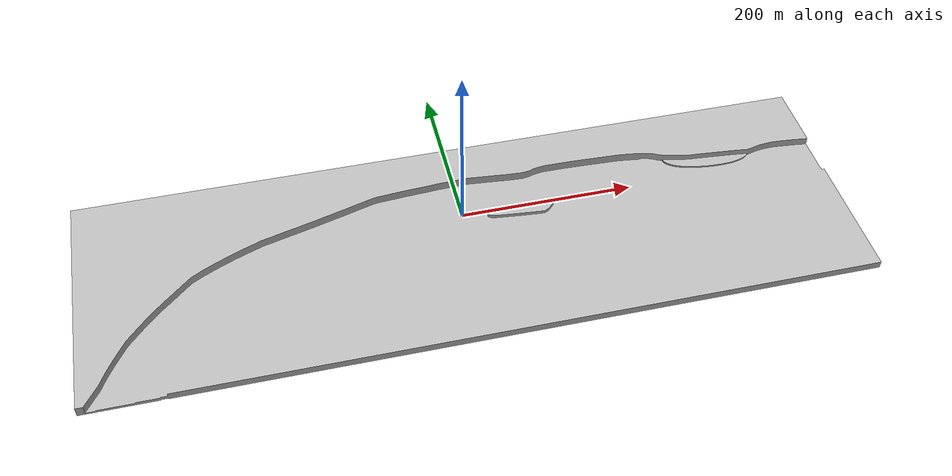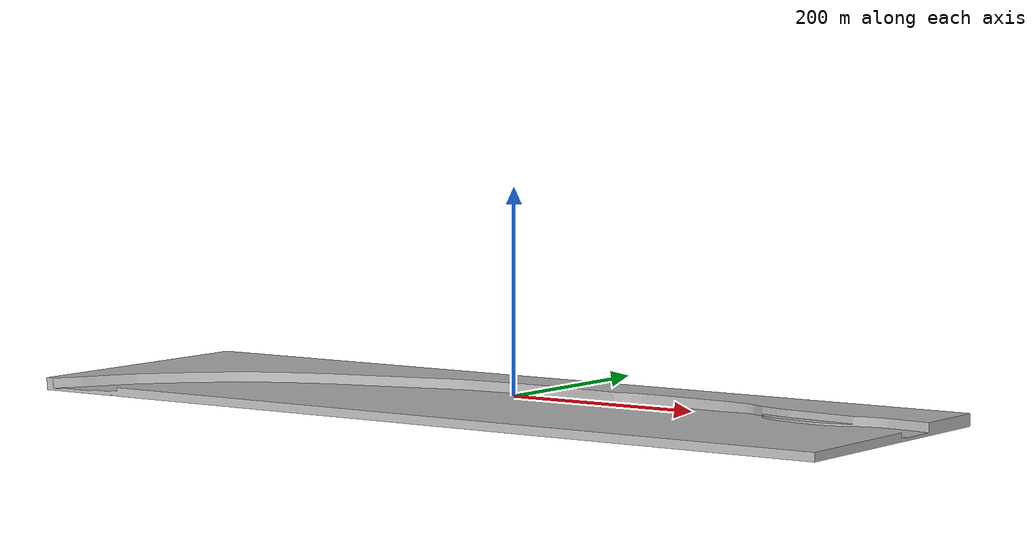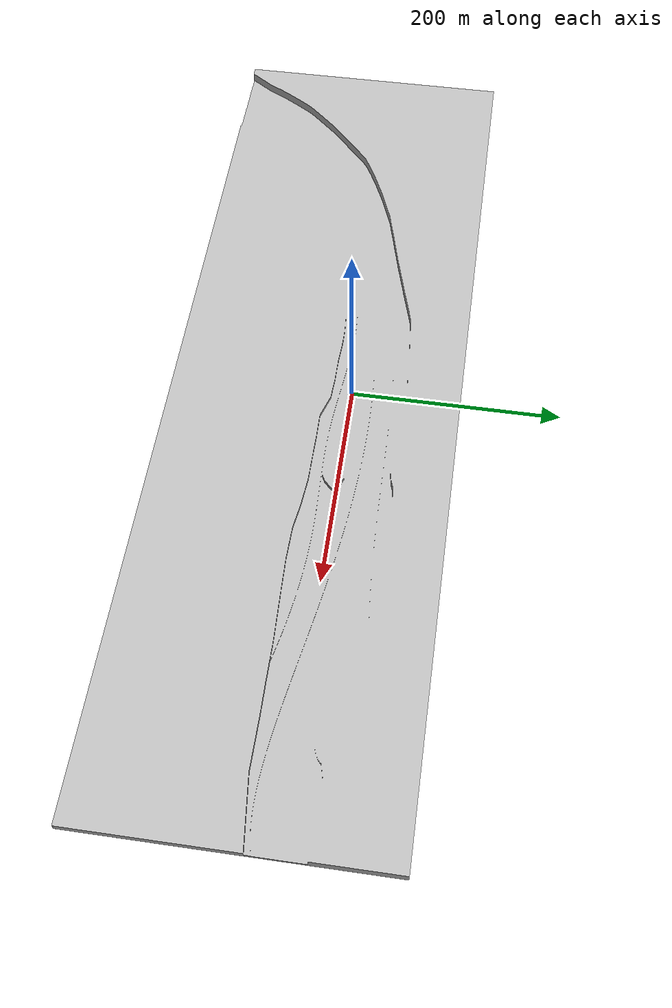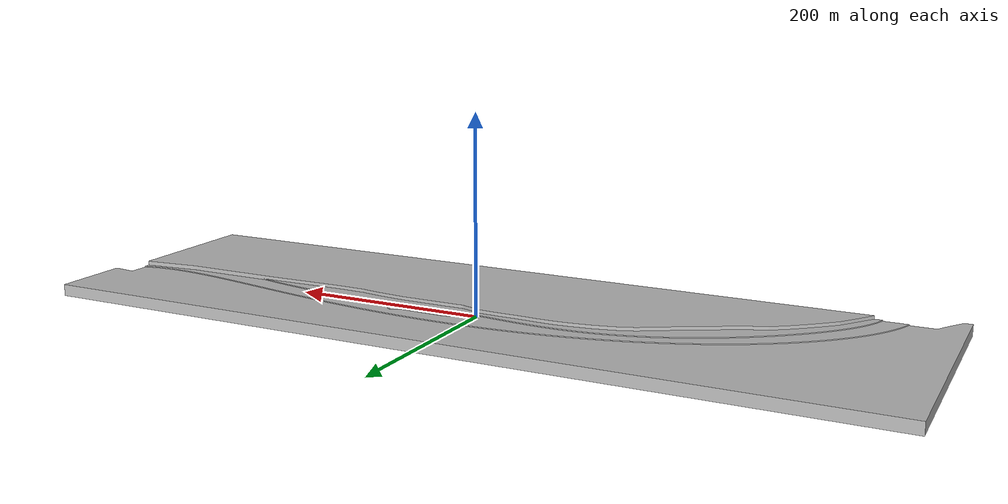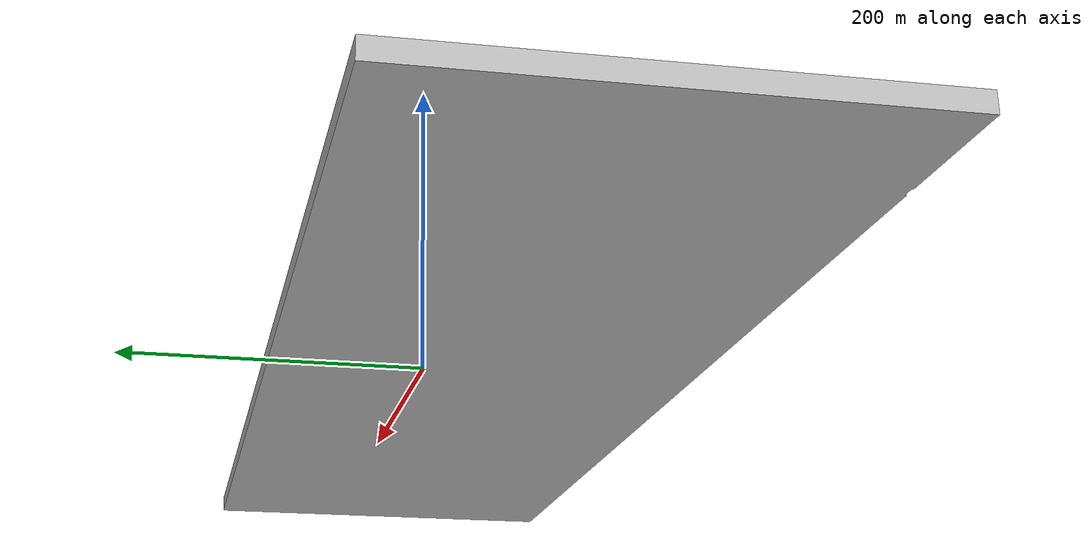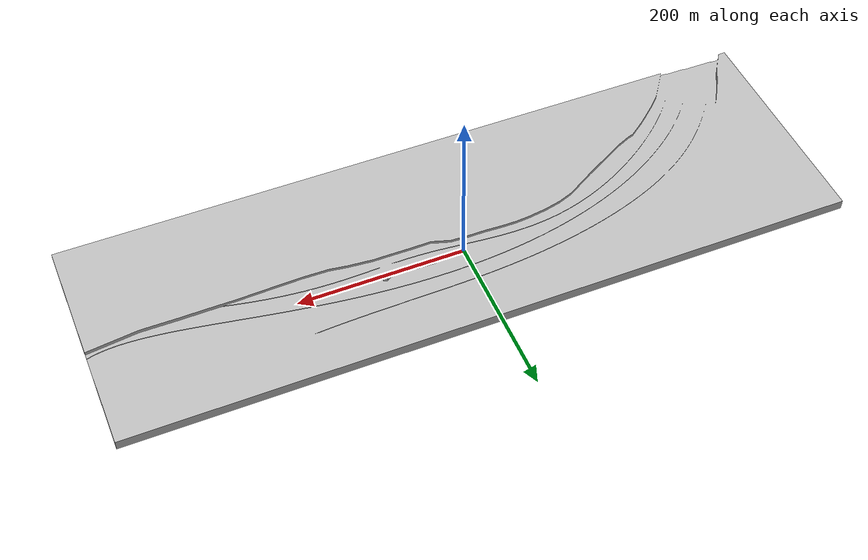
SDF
<?xml version="1.0" ?>
<sdf version="1.6">
  <model name="palheiros_heightmap">
    <static>true</static>
    <link name="link">
      <collision name="collision">
        <geometry>
          <mesh>
            <uri>model://palheiros_heightmap/materials/textures/palheiros_heightmap.stl</uri>
          </mesh>
        </geometry>
      </collision>

      <visual name="visual_terrain">
        <cast_shadows>false</cast_shadows>
        <geometry>
          <mesh>
            <uri>model://palheiros_heightmap/materials/textures/palheiros_heightmap.stl</uri>
          </mesh>
        </geometry>
        <material>
          <script>
            <uri>model://mud_box/materials/scripts</uri>
            <uri>model://mud_box/materials/textures</uri>
            <name>vrc/mud</name>
          </script>
        </material>
      </visual>

    </link>
  </model>
</sdf>
